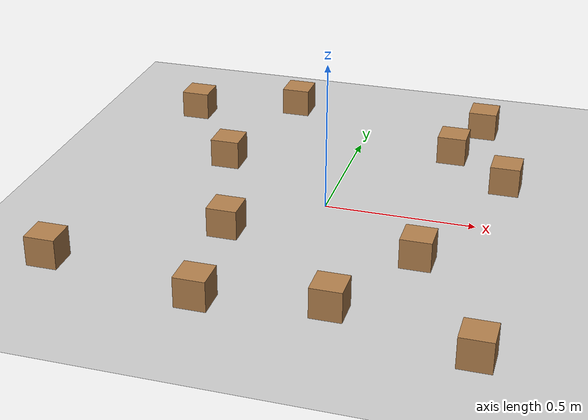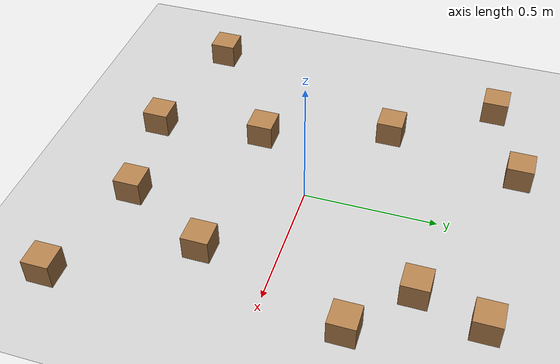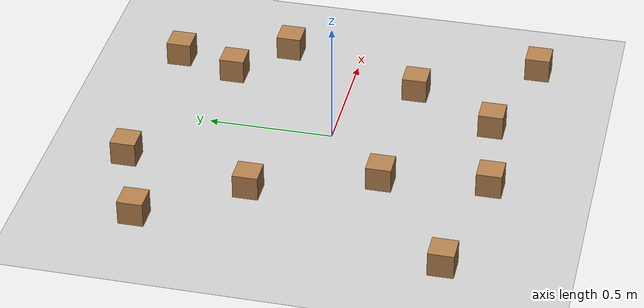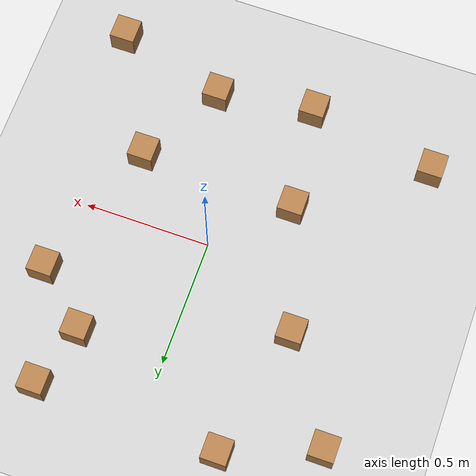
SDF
<sdf version="1.6">
 <world name="default">
  <light name="sun" type="directional">
   <pose>0 0 10 0 -0 0</pose>
   <diffuse>0.8 0.8 0.8 1</diffuse>
   <specular>0.2 0.2 0.2 1</specular>
   <attenuation>
    <range>1000</range>
    <constant>0.9</constant>
    <linear>0.01</linear>
    <quadratic>0.001</quadratic>
   </attenuation>
   <direction>-0.5 0.1 -0.9</direction>
  </light>
  <model name="ground_plane">
   <static>1</static>
   <link name="link">
    <collision name="collision">
     <geometry><plane><normal>0 0 1</normal><size>100 100</size></plane></geometry>
     <surface>
      <contact><collide_bitmask>65535</collide_bitmask></contact>
      <friction><ode><mu>100</mu><mu2>50</mu2></ode></friction>
     </surface>
    </collision>
    <visual name="visual">
     <cast_shadows>0</cast_shadows>
     <geometry><plane><normal>0 0 1</normal><size>100 100</size></plane></geometry>
     <material>
      <script><uri>file://media/materials/scripts/gazebo.material</uri><name>Gazebo/Grey</name></script>
     </material>
    </visual>
   </link>
  </model>
  <gravity>0 0 -9.8</gravity>
  <magnetic_field>6e-06 2.3e-05 -4.2e-05</magnetic_field>
  <atmosphere type="adiabatic"/>
  <physics name="default_physics" default="0" type="ode">
   <max_step_size>0.001</max_step_size>
   <real_time_factor>1</real_time_factor>
   <real_time_update_rate>1000</real_time_update_rate>
  </physics>
  <scene><ambient>0.4 0.4 0.4 1</ambient><background>0.7 0.7 0.7 1</background><shadows>1</shadows></scene>
  <audio><device>default</device></audio>
  <spherical_coordinates>
   <surface_model>EARTH_WGS84</surface_model>
   <latitude_deg>0</latitude_deg>
   <longitude_deg>0</longitude_deg>
   <elevation>0</elevation>
   <heading_deg>0</heading_deg>
  </spherical_coordinates>
  <model name="wood_cube_10cm">
   <link name="link">
    <pose>0 0 0.05 0 -0 0</pose>
    <inertial>
     <mass>0.5167</mass>
     <inertia>
      <ixx>0.000861167</ixx>
      <ixy>0</ixy>
      <ixz>0</ixz>
      <iyy>0.000861167</iyy>
      <iyz>0</iyz>
      <izz>0.000861167</izz>
     </inertia>
    </inertial>
    <collision name="collision">
     <geometry><box><size>0.1 0.1 0.1</size></box></geometry>
     <surface>
      <contact>
       <poissons_ratio>0.347</poissons_ratio>
       <elastic_modulus>8.8e+09</elastic_modulus>
       <ode><kp>100000</kp><kd>100</kd><max_vel>100</max_vel><min_depth>0.001</min_depth></ode>
      </contact>
      <friction>
       <torsional>
        <coefficient>1</coefficient>
        <use_patch_radius>0</use_patch_radius>
        <surface_radius>0.01</surface_radius>
       </torsional>
      </friction>
     </surface>
    </collision>
    <visual name="visual">
     <geometry><box><size>0.1 0.1 0.1</size></box></geometry>
     <material>
      <script><uri>file://media/materials/scripts/gazebo.material</uri><name>Gazebo/Wood</name></script>
     </material>
    </visual>
   </link>
   <pose>-0.261078 -0.249601 -0.001013 0 -0 0</pose>
  </model>
  <model name="wood_cube_10cm_0">
   <link name="link">
    <pose>0 0 0.05 0 -0 0</pose>
    <inertial>
     <mass>0.5167</mass>
     <inertia>
      <ixx>0.000861167</ixx>
      <ixy>0</ixy>
      <ixz>0</ixz>
      <iyy>0.000861167</iyy>
      <iyz>0</iyz>
      <izz>0.000861167</izz>
     </inertia>
    </inertial>
    <collision name="collision">
     <geometry><box><size>0.1 0.1 0.1</size></box></geometry>
     <surface>
      <contact>
       <poissons_ratio>0.347</poissons_ratio>
       <elastic_modulus>8.8e+09</elastic_modulus>
       <ode><kp>100000</kp><kd>100</kd><max_vel>100</max_vel><min_depth>0.001</min_depth></ode>
      </contact>
      <friction>
       <torsional>
        <coefficient>1</coefficient>
        <use_patch_radius>0</use_patch_radius>
        <surface_radius>0.01</surface_radius>
       </torsional>
      </friction>
     </surface>
    </collision>
    <visual name="visual">
     <geometry><box><size>0.1 0.1 0.1</size></box></geometry>
     <material>
      <script><uri>file://media/materials/scripts/gazebo.material</uri><name>Gazebo/Wood</name></script>
     </material>
    </visual>
   </link>
   <pose>0.363634 -0.270013 -0.001013 0 -0 0</pose>
  </model>
  <model name="wood_cube_10cm_1">
   <link name="link">
    <pose>0 0 0.05 0 -0 0</pose>
    <inertial>
     <mass>0.5167</mass>
     <inertia>
      <ixx>0.000861167</ixx>
      <ixy>0</ixy>
      <ixz>0</ixz>
      <iyy>0.000861167</iyy>
      <iyz>0</iyz>
      <izz>0.000861167</izz>
     </inertia>
    </inertial>
    <collision name="collision">
     <geometry><box><size>0.1 0.1 0.1</size></box></geometry>
     <surface>
      <contact>
       <poissons_ratio>0.347</poissons_ratio>
       <elastic_modulus>8.8e+09</elastic_modulus>
       <ode><kp>100000</kp><kd>100</kd><max_vel>100</max_vel><min_depth>0.001</min_depth></ode>
      </contact>
      <friction>
       <torsional>
        <coefficient>1</coefficient>
        <use_patch_radius>0</use_patch_radius>
        <surface_radius>0.01</surface_radius>
       </torsional>
      </friction>
     </surface>
    </collision>
    <visual name="visual">
     <geometry><box><size>0.1 0.1 0.1</size></box></geometry>
     <material>
      <script><uri>file://media/materials/scripts/gazebo.material</uri><name>Gazebo/Wood</name></script>
     </material>
    </visual>
   </link>
   <pose>0.176594 -0.612915 -0.001013 0 -0 0</pose>
  </model>
  <model name="wood_cube_10cm_2">
   <link name="link">
    <pose>0 0 0.05 0 -0 0</pose>
    <inertial>
     <mass>0.5167</mass>
     <inertia>
      <ixx>0.000861167</ixx>
      <ixy>0</ixy>
      <ixz>0</ixz>
      <iyy>0.000861167</iyy>
      <iyz>0</iyz>
      <izz>0.000861167</izz>
     </inertia>
    </inertial>
    <collision name="collision">
     <geometry><box><size>0.1 0.1 0.1</size></box></geometry>
     <surface>
      <contact>
       <poissons_ratio>0.347</poissons_ratio>
       <elastic_modulus>8.8e+09</elastic_modulus>
       <ode><kp>100000</kp><kd>100</kd><max_vel>100</max_vel><min_depth>0.001</min_depth></ode>
      </contact>
      <friction>
       <torsional>
        <coefficient>1</coefficient>
        <use_patch_radius>0</use_patch_radius>
        <surface_radius>0.01</surface_radius>
       </torsional>
      </friction>
     </surface>
    </collision>
    <visual name="visual">
     <geometry><box><size>0.1 0.1 0.1</size></box></geometry>
     <material>
      <script><uri>file://media/materials/scripts/gazebo.material</uri><name>Gazebo/Wood</name></script>
     </material>
    </visual>
   </link>
   <pose>-0.20981 -0.669527 -0.001013 0 -0 0</pose>
  </model>
  <model name="wood_cube_10cm_3">
   <link name="link">
    <pose>0 0 0.05 0 -0 0</pose>
    <inertial>
     <mass>0.5167</mass>
     <inertia>
      <ixx>0.000861167</ixx>
      <ixy>0</ixy>
      <ixz>0</ixz>
      <iyy>0.000861167</iyy>
      <iyz>0</iyz>
      <izz>0.000861167</izz>
     </inertia>
    </inertial>
    <collision name="collision">
     <geometry><box><size>0.1 0.1 0.1</size></box></geometry>
     <surface>
      <contact>
       <poissons_ratio>0.347</poissons_ratio>
       <elastic_modulus>8.8e+09</elastic_modulus>
       <ode><kp>100000</kp><kd>100</kd><max_vel>100</max_vel><min_depth>0.001</min_depth></ode>
      </contact>
      <friction>
       <torsional>
        <coefficient>1</coefficient>
        <use_patch_radius>0</use_patch_radius>
        <surface_radius>0.01</surface_radius>
       </torsional>
      </friction>
     </surface>
    </collision>
    <visual name="visual">
     <geometry><box><size>0.1 0.1 0.1</size></box></geometry>
     <material>
      <script><uri>file://media/materials/scripts/gazebo.material</uri><name>Gazebo/Wood</name></script>
     </material>
    </visual>
   </link>
   <pose>-0.724881 -0.577171 -0.001013 0 -0 0</pose>
  </model>
  <model name="wood_cube_10cm_4">
   <link name="link">
    <pose>0 0 0.05 0 -0 0</pose>
    <inertial>
     <mass>0.5167</mass>
     <inertia>
      <ixx>0.000861167</ixx>
      <ixy>0</ixy>
      <ixz>0</ixz>
      <iyy>0.000861167</iyy>
      <iyz>0</iyz>
      <izz>0.000861167</izz>
     </inertia>
    </inertial>
    <collision name="collision">
     <geometry><box><size>0.1 0.1 0.1</size></box></geometry>
     <surface>
      <contact>
       <poissons_ratio>0.347</poissons_ratio>
       <elastic_modulus>8.8e+09</elastic_modulus>
       <ode><kp>100000</kp><kd>100</kd><max_vel>100</max_vel><min_depth>0.001</min_depth></ode>
      </contact>
      <friction>
       <torsional>
        <coefficient>1</coefficient>
        <use_patch_radius>0</use_patch_radius>
        <surface_radius>0.01</surface_radius>
       </torsional>
      </friction>
     </surface>
    </collision>
    <visual name="visual">
     <geometry><box><size>0.1 0.1 0.1</size></box></geometry>
     <material>
      <script><uri>file://media/materials/scripts/gazebo.material</uri><name>Gazebo/Wood</name></script>
     </material>
    </visual>
   </link>
   <pose>0.616614 -0.734918 -0.001013 0 -0 0</pose>
  </model>
  <model name="wood_cube_10cm_5">
   <link name="link">
    <pose>0 0 0.05 0 -0 0</pose>
    <inertial>
     <mass>0.5167</mass>
     <inertia>
      <ixx>0.000861167</ixx>
      <ixy>0</ixy>
      <ixz>0</ixz>
      <iyy>0.000861167</iyy>
      <iyz>0</iyz>
      <izz>0.000861167</izz>
     </inertia>
    </inertial>
    <collision name="collision">
     <geometry><box><size>0.1 0.1 0.1</size></box></geometry>
     <surface>
      <contact>
       <poissons_ratio>0.347</poissons_ratio>
       <elastic_modulus>8.8e+09</elastic_modulus>
       <ode><kp>100000</kp><kd>100</kd><max_vel>100</max_vel><min_depth>0.001</min_depth></ode>
      </contact>
      <friction>
       <torsional>
        <coefficient>1</coefficient>
        <use_patch_radius>0</use_patch_radius>
        <surface_radius>0.01</surface_radius>
       </torsional>
      </friction>
     </surface>
    </collision>
    <visual name="visual">
     <geometry><box><size>0.1 0.1 0.1</size></box></geometry>
     <material>
      <script><uri>file://media/materials/scripts/gazebo.material</uri><name>Gazebo/Wood</name></script>
     </material>
    </visual>
   </link>
   <pose>0.554636 0.297961 -0.001013 0 -0 0</pose>
  </model>
  <model name="wood_cube_10cm_6">
   <link name="link">
    <pose>0 0 0.05 0 -0 0</pose>
    <inertial>
     <mass>0.5167</mass>
     <inertia>
      <ixx>0.000861167</ixx>
      <ixy>0</ixy>
      <ixz>0</ixz>
      <iyy>0.000861167</iyy>
      <iyz>0</iyz>
      <izz>0.000861167</izz>
     </inertia>
    </inertial>
    <collision name="collision">
     <geometry><box><size>0.1 0.1 0.1</size></box></geometry>
     <surface>
      <contact>
       <poissons_ratio>0.347</poissons_ratio>
       <elastic_modulus>8.8e+09</elastic_modulus>
       <ode><kp>100000</kp><kd>100</kd><max_vel>100</max_vel><min_depth>0.001</min_depth></ode>
      </contact>
      <friction>
       <torsional>
        <coefficient>1</coefficient>
        <use_patch_radius>0</use_patch_radius>
        <surface_radius>0.01</surface_radius>
       </torsional>
      </friction>
     </surface>
    </collision>
    <visual name="visual">
     <geometry><box><size>0.1 0.1 0.1</size></box></geometry>
     <material>
      <script><uri>file://media/materials/scripts/gazebo.material</uri><name>Gazebo/Wood</name></script>
     </material>
    </visual>
   </link>
   <pose>0.414287 0.732403 -0.001013 0 -0 0</pose>
  </model>
  <model name="wood_cube_10cm_7">
   <link name="link">
    <pose>0 0 0.05 0 -0 0</pose>
    <inertial>
     <mass>0.5167</mass>
     <inertia>
      <ixx>0.000861167</ixx>
      <ixy>0</ixy>
      <ixz>0</ixz>
      <iyy>0.000861167</iyy>
      <iyz>0</iyz>
      <izz>0.000861167</izz>
     </inertia>
    </inertial>
    <collision name="collision">
     <geometry><box><size>0.1 0.1 0.1</size></box></geometry>
     <surface>
      <contact>
       <poissons_ratio>0.347</poissons_ratio>
       <elastic_modulus>8.8e+09</elastic_modulus>
       <ode><kp>100000</kp><kd>100</kd><max_vel>100</max_vel><min_depth>0.001</min_depth></ode>
      </contact>
      <friction>
       <torsional>
        <coefficient>1</coefficient>
        <use_patch_radius>0</use_patch_radius>
        <surface_radius>0.01</surface_radius>
       </torsional>
      </friction>
     </surface>
    </collision>
    <visual name="visual">
     <geometry><box><size>0.1 0.1 0.1</size></box></geometry>
     <material>
      <script><uri>file://media/materials/scripts/gazebo.material</uri><name>Gazebo/Wood</name></script>
     </material>
    </visual>
   </link>
   <pose>0.341864 0.487473 -0.001013 0 -0 0</pose>
  </model>
  <model name="wood_cube_10cm_8">
   <link name="link">
    <pose>0 0 0.05 0 -0 0</pose>
    <inertial>
     <mass>0.5167</mass>
     <inertia>
      <ixx>0.000861167</ixx>
      <ixy>0</ixy>
      <ixz>0</ixz>
      <iyy>0.000861167</iyy>
      <iyz>0</iyz>
      <izz>0.000861167</izz>
     </inertia>
    </inertial>
    <collision name="collision">
     <geometry><box><size>0.1 0.1 0.1</size></box></geometry>
     <surface>
      <contact>
       <poissons_ratio>0.347</poissons_ratio>
       <elastic_modulus>8.8e+09</elastic_modulus>
       <ode><kp>100000</kp><kd>100</kd><max_vel>100</max_vel><min_depth>0.001</min_depth></ode>
      </contact>
      <friction>
       <torsional>
        <coefficient>1</coefficient>
        <use_patch_radius>0</use_patch_radius>
        <surface_radius>0.01</surface_radius>
       </torsional>
      </friction>
     </surface>
    </collision>
    <visual name="visual">
     <geometry><box><size>0.1 0.1 0.1</size></box></geometry>
     <material>
      <script><uri>file://media/materials/scripts/gazebo.material</uri><name>Gazebo/Wood</name></script>
     </material>
    </visual>
   </link>
   <pose>-0.310404 0.754303 -0.001013 0 -0 0</pose>
  </model>
  <model name="wood_cube_10cm_9">
   <link name="link">
    <pose>0 0 0.05 0 -0 0</pose>
    <inertial>
     <mass>0.5167</mass>
     <inertia>
      <ixx>0.000861167</ixx>
      <ixy>0</ixy>
      <ixz>0</ixz>
      <iyy>0.000861167</iyy>
      <iyz>0</iyz>
      <izz>0.000861167</izz>
     </inertia>
    </inertial>
    <collision name="collision">
     <geometry><box><size>0.1 0.1 0.1</size></box></geometry>
     <surface>
      <contact>
       <poissons_ratio>0.347</poissons_ratio>
       <elastic_modulus>8.8e+09</elastic_modulus>
       <ode><kp>100000</kp><kd>100</kd><max_vel>100</max_vel><min_depth>0.001</min_depth></ode>
      </contact>
      <friction>
       <torsional>
        <coefficient>1</coefficient>
        <use_patch_radius>0</use_patch_radius>
        <surface_radius>0.01</surface_radius>
       </torsional>
      </friction>
     </surface>
    </collision>
    <visual name="visual">
     <geometry><box><size>0.1 0.1 0.1</size></box></geometry>
     <material>
      <script><uri>file://media/materials/scripts/gazebo.material</uri><name>Gazebo/Wood</name></script>
     </material>
    </visual>
   </link>
   <pose>-0.419565 0.235909 -0.001013 0 -0 0</pose>
  </model>
  <model name="wood_cube_10cm_10">
   <link name="link">
    <pose>0 0 0.05 0 -0 0</pose>
    <inertial>
     <mass>0.5167</mass>
     <inertia>
      <ixx>0.000861167</ixx>
      <ixy>0</ixy>
      <ixz>0</ixz>
      <iyy>0.000861167</iyy>
      <iyz>0</iyz>
      <izz>0.000861167</izz>
     </inertia>
    </inertial>
    <collision name="collision">
     <geometry><box><size>0.1 0.1 0.1</size></box></geometry>
     <surface>
      <contact>
       <poissons_ratio>0.347</poissons_ratio>
       <elastic_modulus>8.8e+09</elastic_modulus>
       <ode><kp>100000</kp><kd>100</kd><max_vel>100</max_vel><min_depth>0.001</min_depth></ode>
      </contact>
      <friction>
       <torsional>
        <coefficient>1</coefficient>
        <use_patch_radius>0</use_patch_radius>
        <surface_radius>0.01</surface_radius>
       </torsional>
      </friction>
     </surface>
    </collision>
    <visual name="visual">
     <geometry><box><size>0.1 0.1 0.1</size></box></geometry>
     <material>
      <script><uri>file://media/materials/scripts/gazebo.material</uri><name>Gazebo/Wood</name></script>
     </material>
    </visual>
   </link>
   <pose>-0.671507 0.616579 -0.001013 0 -0 0</pose>
  </model>
 </world>
</sdf>
